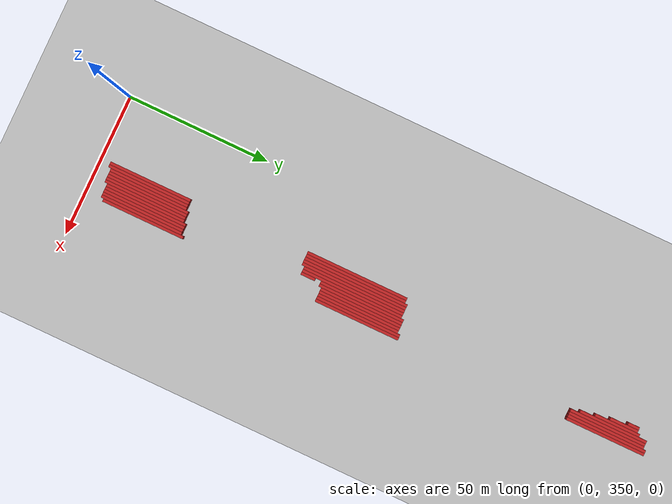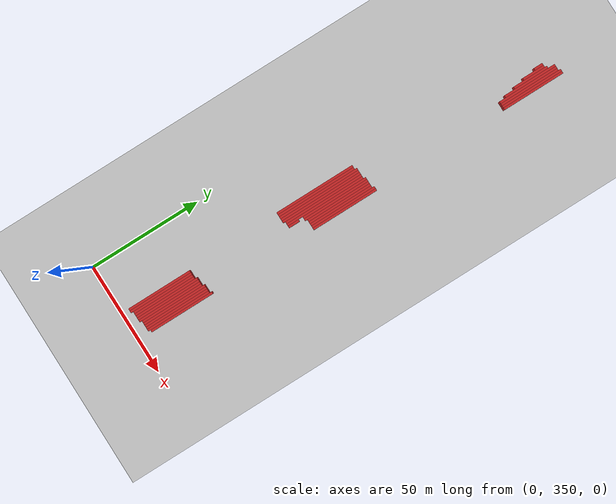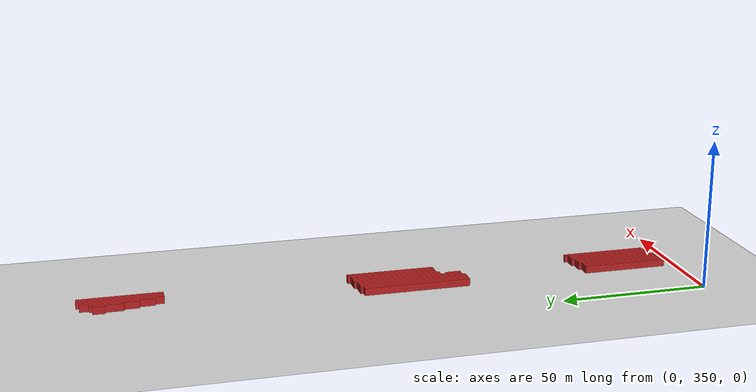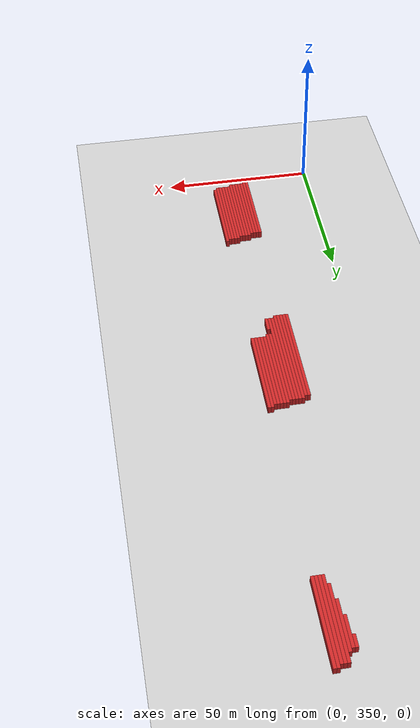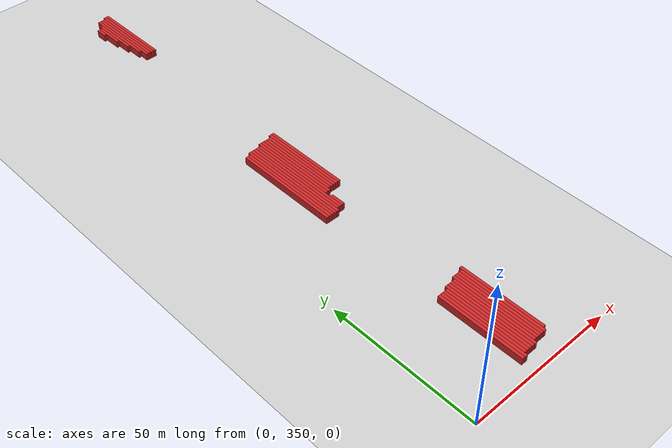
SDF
<sdf version="1.4">
 <world name="1_wall">
  <model name="ground_plane">
   <static>1</static>
   <link name="link">
    <collision name="collision">
     <geometry><plane><normal>0 0 1</normal><size>1000 1000</size></plane></geometry>
     <surface><friction><ode><mu>100</mu><mu2>50</mu2></ode></friction></surface>
    </collision>
    <visual name="visual">
     <cast_shadows>0</cast_shadows>
     <geometry><plane><normal>0 0 1</normal><size>10000 10000</size></plane></geometry>
     <material>
      <script><uri>file://media/materials/scripts/gazebo.material</uri><name>Gazebo/Grey</name></script>
     </material>
    </visual>
    <velocity_decay><linear>0</linear><angular>0</angular></velocity_decay>
   </link>
  </model>
  <model name="Wall_37">
   <static>1</static>
   <link name="Wall_37">
    <collision name="Wall_Collision_37">
     <geometry><box><size>36.0 1.0 2.5</size></box></geometry>
     <pose>0 0 1.25 0 -0 0</pose>
    </collision>
    <visual name="Wall_Visual_37">
     <pose>0 0 1.25 0 -0 0</pose>
     <geometry><box><size>36.0 1.0 2.5</size></box></geometry>
     <material>
      <script><uri>file://media/materials/scripts/gazebo.material</uri><name>Gazebo/Red</name></script>
     </material>
    </visual>
    <velocity_decay><linear>0</linear><angular>0</angular></velocity_decay>
    <pose>21.5 443.0 0 0 0 1.5707963267948966</pose>
   </link>
  </model>
  <model name="Wall_38">
   <static>1</static>
   <link name="Wall_38">
    <collision name="Wall_Collision_38">
     <geometry><box><size>29.0 1.0 2.5</size></box></geometry>
     <pose>0 0 1.25 0 -0 0</pose>
    </collision>
    <visual name="Wall_Visual_38">
     <pose>0 0 1.25 0 -0 0</pose>
     <geometry><box><size>29.0 1.0 2.5</size></box></geometry>
     <material>
      <script><uri>file://media/materials/scripts/gazebo.material</uri><name>Gazebo/Red</name></script>
     </material>
    </visual>
    <velocity_decay><linear>0</linear><angular>0</angular></velocity_decay>
    <pose>22.5 368.5 0 0 0 1.5707963267948966</pose>
   </link>
  </model>
  <model name="Wall_39">
   <static>1</static>
   <link name="Wall_39">
    <collision name="Wall_Collision_39">
     <geometry><box><size>36.0 1.0 2.5</size></box></geometry>
     <pose>0 0 1.25 0 -0 0</pose>
    </collision>
    <visual name="Wall_Visual_39">
     <pose>0 0 1.25 0 -0 0</pose>
     <geometry><box><size>36.0 1.0 2.5</size></box></geometry>
     <material>
      <script><uri>file://media/materials/scripts/gazebo.material</uri><name>Gazebo/Red</name></script>
     </material>
    </visual>
    <velocity_decay><linear>0</linear><angular>0</angular></velocity_decay>
    <pose>22.5 443.0 0 0 0 1.5707963267948966</pose>
   </link>
  </model>
  <model name="Wall_40">
   <static>1</static>
   <link name="Wall_40">
    <collision name="Wall_Collision_40">
     <geometry><box><size>29.0 1.0 2.5</size></box></geometry>
     <pose>0 0 1.25 0 -0 0</pose>
    </collision>
    <visual name="Wall_Visual_40">
     <pose>0 0 1.25 0 -0 0</pose>
     <geometry><box><size>29.0 1.0 2.5</size></box></geometry>
     <material>
      <script><uri>file://media/materials/scripts/gazebo.material</uri><name>Gazebo/Red</name></script>
     </material>
    </visual>
    <velocity_decay><linear>0</linear><angular>0</angular></velocity_decay>
    <pose>23.5 368.5 0 0 0 1.5707963267948966</pose>
   </link>
  </model>
  <model name="Wall_41">
   <static>1</static>
   <link name="Wall_41">
    <collision name="Wall_Collision_41">
     <geometry><box><size>37.0 1.0 2.5</size></box></geometry>
     <pose>0 0 1.25 0 -0 0</pose>
    </collision>
    <visual name="Wall_Visual_41">
     <pose>0 0 1.25 0 -0 0</pose>
     <geometry><box><size>37.0 1.0 2.5</size></box></geometry>
     <material>
      <script><uri>file://media/materials/scripts/gazebo.material</uri><name>Gazebo/Red</name></script>
     </material>
    </visual>
    <velocity_decay><linear>0</linear><angular>0</angular></velocity_decay>
    <pose>23.5 443.5 0 0 0 1.5707963267948966</pose>
   </link>
  </model>
  <model name="Wall_42">
   <static>1</static>
   <link name="Wall_42">
    <collision name="Wall_Collision_42">
     <geometry><box><size>28.0 1.0 2.5</size></box></geometry>
     <pose>0 0 1.25 0 -0 0</pose>
    </collision>
    <visual name="Wall_Visual_42">
     <pose>0 0 1.25 0 -0 0</pose>
     <geometry><box><size>28.0 1.0 2.5</size></box></geometry>
     <material>
      <script><uri>file://media/materials/scripts/gazebo.material</uri><name>Gazebo/Red</name></script>
     </material>
    </visual>
    <velocity_decay><linear>0</linear><angular>0</angular></velocity_decay>
    <pose>24.5 369.0 0 0 0 1.5707963267948966</pose>
   </link>
  </model>
  <model name="Wall_43">
   <static>1</static>
   <link name="Wall_43">
    <collision name="Wall_Collision_43">
     <geometry><box><size>37.0 1.0 2.5</size></box></geometry>
     <pose>0 0 1.25 0 -0 0</pose>
    </collision>
    <visual name="Wall_Visual_43">
     <pose>0 0 1.25 0 -0 0</pose>
     <geometry><box><size>37.0 1.0 2.5</size></box></geometry>
     <material>
      <script><uri>file://media/materials/scripts/gazebo.material</uri><name>Gazebo/Red</name></script>
     </material>
    </visual>
    <velocity_decay><linear>0</linear><angular>0</angular></velocity_decay>
    <pose>24.5 443.5 0 0 0 1.5707963267948966</pose>
   </link>
  </model>
  <model name="Wall_44">
   <static>1</static>
   <link name="Wall_44">
    <collision name="Wall_Collision_44">
     <geometry><box><size>28.0 1.0 2.5</size></box></geometry>
     <pose>0 0 1.25 0 -0 0</pose>
    </collision>
    <visual name="Wall_Visual_44">
     <pose>0 0 1.25 0 -0 0</pose>
     <geometry><box><size>28.0 1.0 2.5</size></box></geometry>
     <material>
      <script><uri>file://media/materials/scripts/gazebo.material</uri><name>Gazebo/Red</name></script>
     </material>
    </visual>
    <velocity_decay><linear>0</linear><angular>0</angular></velocity_decay>
    <pose>25.5 369.0 0 0 0 1.5707963267948966</pose>
   </link>
  </model>
  <model name="Wall_45">
   <static>1</static>
   <link name="Wall_45">
    <collision name="Wall_Collision_45">
     <geometry><box><size>37.0 1.0 2.5</size></box></geometry>
     <pose>0 0 1.25 0 -0 0</pose>
    </collision>
    <visual name="Wall_Visual_45">
     <pose>0 0 1.25 0 -0 0</pose>
     <geometry><box><size>37.0 1.0 2.5</size></box></geometry>
     <material>
      <script><uri>file://media/materials/scripts/gazebo.material</uri><name>Gazebo/Red</name></script>
     </material>
    </visual>
    <velocity_decay><linear>0</linear><angular>0</angular></velocity_decay>
    <pose>25.5 443.5 0 0 0 1.5707963267948966</pose>
   </link>
  </model>
  <model name="Wall_46">
   <static>1</static>
   <link name="Wall_46">
    <collision name="Wall_Collision_46">
     <geometry><box><size>29.0 1.0 2.5</size></box></geometry>
     <pose>0 0 1.25 0 -0 0</pose>
    </collision>
    <visual name="Wall_Visual_46">
     <pose>0 0 1.25 0 -0 0</pose>
     <geometry><box><size>29.0 1.0 2.5</size></box></geometry>
     <material>
      <script><uri>file://media/materials/scripts/gazebo.material</uri><name>Gazebo/Red</name></script>
     </material>
    </visual>
    <velocity_decay><linear>0</linear><angular>0</angular></velocity_decay>
    <pose>26.5 369.5 0 0 0 1.5707963267948966</pose>
   </link>
  </model>
  <model name="Wall_47">
   <static>1</static>
   <link name="Wall_47">
    <collision name="Wall_Collision_47">
     <geometry><box><size>36.0 1.0 2.5</size></box></geometry>
     <pose>0 0 1.25 0 -0 0</pose>
    </collision>
    <visual name="Wall_Visual_47">
     <pose>0 0 1.25 0 -0 0</pose>
     <geometry><box><size>36.0 1.0 2.5</size></box></geometry>
     <material>
      <script><uri>file://media/materials/scripts/gazebo.material</uri><name>Gazebo/Red</name></script>
     </material>
    </visual>
    <velocity_decay><linear>0</linear><angular>0</angular></velocity_decay>
    <pose>26.5 444.0 0 0 0 1.5707963267948966</pose>
   </link>
  </model>
  <model name="Wall_48">
   <static>1</static>
   <link name="Wall_48">
    <collision name="Wall_Collision_48">
     <geometry><box><size>29.0 1.0 2.5</size></box></geometry>
     <pose>0 0 1.25 0 -0 0</pose>
    </collision>
    <visual name="Wall_Visual_48">
     <pose>0 0 1.25 0 -0 0</pose>
     <geometry><box><size>29.0 1.0 2.5</size></box></geometry>
     <material>
      <script><uri>file://media/materials/scripts/gazebo.material</uri><name>Gazebo/Red</name></script>
     </material>
    </visual>
    <velocity_decay><linear>0</linear><angular>0</angular></velocity_decay>
    <pose>27.5 369.5 0 0 0 1.5707963267948966</pose>
   </link>
  </model>
  <model name="Wall_49">
   <static>1</static>
   <link name="Wall_49">
    <collision name="Wall_Collision_49">
     <geometry><box><size>36.0 1.0 2.5</size></box></geometry>
     <pose>0 0 1.25 0 -0 0</pose>
    </collision>
    <visual name="Wall_Visual_49">
     <pose>0 0 1.25 0 -0 0</pose>
     <geometry><box><size>36.0 1.0 2.5</size></box></geometry>
     <material>
      <script><uri>file://media/materials/scripts/gazebo.material</uri><name>Gazebo/Red</name></script>
     </material>
    </visual>
    <velocity_decay><linear>0</linear><angular>0</angular></velocity_decay>
    <pose>27.5 444.0 0 0 0 1.5707963267948966</pose>
   </link>
  </model>
  <model name="Wall_50">
   <static>1</static>
   <link name="Wall_50">
    <collision name="Wall_Collision_50">
     <geometry><box><size>4.0 1.0 2.5</size></box></geometry>
     <pose>0 0 1.25 0 -0 0</pose>
    </collision>
    <visual name="Wall_Visual_50">
     <pose>0 0 1.25 0 -0 0</pose>
     <geometry><box><size>4.0 1.0 2.5</size></box></geometry>
     <material>
      <script><uri>file://media/materials/scripts/gazebo.material</uri><name>Gazebo/Red</name></script>
     </material>
    </visual>
    <velocity_decay><linear>0</linear><angular>0</angular></velocity_decay>
    <pose>27.5 546.0 0 0 0 1.5707963267948966</pose>
   </link>
  </model>
  <model name="Wall_51">
   <static>1</static>
   <link name="Wall_51">
    <collision name="Wall_Collision_51">
     <geometry><box><size>29.0 1.0 2.5</size></box></geometry>
     <pose>0 0 1.25 0 -0 0</pose>
    </collision>
    <visual name="Wall_Visual_51">
     <pose>0 0 1.25 0 -0 0</pose>
     <geometry><box><size>29.0 1.0 2.5</size></box></geometry>
     <material>
      <script><uri>file://media/materials/scripts/gazebo.material</uri><name>Gazebo/Red</name></script>
     </material>
    </visual>
    <velocity_decay><linear>0</linear><angular>0</angular></velocity_decay>
    <pose>28.5 369.5 0 0 0 1.5707963267948966</pose>
   </link>
  </model>
  <model name="Wall_52">
   <static>1</static>
   <link name="Wall_52">
    <collision name="Wall_Collision_52">
     <geometry><box><size>5.0 1.0 2.5</size></box></geometry>
     <pose>0 0 1.25 0 -0 0</pose>
    </collision>
    <visual name="Wall_Visual_52">
     <pose>0 0 1.25 0 -0 0</pose>
     <geometry><box><size>5.0 1.0 2.5</size></box></geometry>
     <material>
      <script><uri>file://media/materials/scripts/gazebo.material</uri><name>Gazebo/Red</name></script>
     </material>
    </visual>
    <velocity_decay><linear>0</linear><angular>0</angular></velocity_decay>
    <pose>28.5 428.5 0 0 0 1.5707963267948966</pose>
   </link>
  </model>
  <model name="Wall_53">
   <static>1</static>
   <link name="Wall_53">
    <collision name="Wall_Collision_53">
     <geometry><box><size>30.0 1.0 2.5</size></box></geometry>
     <pose>0 0 1.25 0 -0 0</pose>
    </collision>
    <visual name="Wall_Visual_53">
     <pose>0 0 1.25 0 -0 0</pose>
     <geometry><box><size>30.0 1.0 2.5</size></box></geometry>
     <material>
      <script><uri>file://media/materials/scripts/gazebo.material</uri><name>Gazebo/Red</name></script>
     </material>
    </visual>
    <velocity_decay><linear>0</linear><angular>0</angular></velocity_decay>
    <pose>28.5 448.0 0 0 0 1.5707963267948966</pose>
   </link>
  </model>
  <model name="Wall_54">
   <static>1</static>
   <link name="Wall_54">
    <collision name="Wall_Collision_54">
     <geometry><box><size>10.0 1.0 2.5</size></box></geometry>
     <pose>0 0 1.25 0 -0 0</pose>
    </collision>
    <visual name="Wall_Visual_54">
     <pose>0 0 1.25 0 -0 0</pose>
     <geometry><box><size>10.0 1.0 2.5</size></box></geometry>
     <material>
      <script><uri>file://media/materials/scripts/gazebo.material</uri><name>Gazebo/Red</name></script>
     </material>
    </visual>
    <velocity_decay><linear>0</linear><angular>0</angular></velocity_decay>
    <pose>28.5 543.0 0 0 0 1.5707963267948966</pose>
   </link>
  </model>
  <model name="Wall_55">
   <static>1</static>
   <link name="Wall_55">
    <collision name="Wall_Collision_55">
     <geometry><box><size>28.0 1.0 2.5</size></box></geometry>
     <pose>0 0 1.25 0 -0 0</pose>
    </collision>
    <visual name="Wall_Visual_55">
     <pose>0 0 1.25 0 -0 0</pose>
     <geometry><box><size>28.0 1.0 2.5</size></box></geometry>
     <material>
      <script><uri>file://media/materials/scripts/gazebo.material</uri><name>Gazebo/Red</name></script>
     </material>
    </visual>
    <velocity_decay><linear>0</linear><angular>0</angular></velocity_decay>
    <pose>29.5 370.0 0 0 0 1.5707963267948966</pose>
   </link>
  </model>
  <model name="Wall_56">
   <static>1</static>
   <link name="Wall_56">
    <collision name="Wall_Collision_56">
     <geometry><box><size>30.0 1.0 2.5</size></box></geometry>
     <pose>0 0 1.25 0 -0 0</pose>
    </collision>
    <visual name="Wall_Visual_56">
     <pose>0 0 1.25 0 -0 0</pose>
     <geometry><box><size>30.0 1.0 2.5</size></box></geometry>
     <material>
      <script><uri>file://media/materials/scripts/gazebo.material</uri><name>Gazebo/Red</name></script>
     </material>
    </visual>
    <velocity_decay><linear>0</linear><angular>0</angular></velocity_decay>
    <pose>29.5 448.0 0 0 0 1.5707963267948966</pose>
   </link>
  </model>
  <model name="Wall_57">
   <static>1</static>
   <link name="Wall_57">
    <collision name="Wall_Collision_57">
     <geometry><box><size>16.0 1.0 2.5</size></box></geometry>
     <pose>0 0 1.25 0 -0 0</pose>
    </collision>
    <visual name="Wall_Visual_57">
     <pose>0 0 1.25 0 -0 0</pose>
     <geometry><box><size>16.0 1.0 2.5</size></box></geometry>
     <material>
      <script><uri>file://media/materials/scripts/gazebo.material</uri><name>Gazebo/Red</name></script>
     </material>
    </visual>
    <velocity_decay><linear>0</linear><angular>0</angular></velocity_decay>
    <pose>29.5 541.0 0 0 0 1.5707963267948966</pose>
   </link>
  </model>
  <model name="Wall_58">
   <static>1</static>
   <link name="Wall_58">
    <collision name="Wall_Collision_58">
     <geometry><box><size>29.0 1.0 2.5</size></box></geometry>
     <pose>0 0 1.25 0 -0 0</pose>
    </collision>
    <visual name="Wall_Visual_58">
     <pose>0 0 1.25 0 -0 0</pose>
     <geometry><box><size>29.0 1.0 2.5</size></box></geometry>
     <material>
      <script><uri>file://media/materials/scripts/gazebo.material</uri><name>Gazebo/Red</name></script>
     </material>
    </visual>
    <velocity_decay><linear>0</linear><angular>0</angular></velocity_decay>
    <pose>30.5 370.5 0 0 0 1.5707963267948966</pose>
   </link>
  </model>
  <model name="Wall_59">
   <static>1</static>
   <link name="Wall_59">
    <collision name="Wall_Collision_59">
     <geometry><box><size>29.0 1.0 2.5</size></box></geometry>
     <pose>0 0 1.25 0 -0 0</pose>
    </collision>
    <visual name="Wall_Visual_59">
     <pose>0 0 1.25 0 -0 0</pose>
     <geometry><box><size>29.0 1.0 2.5</size></box></geometry>
     <material>
      <script><uri>file://media/materials/scripts/gazebo.material</uri><name>Gazebo/Red</name></script>
     </material>
    </visual>
    <velocity_decay><linear>0</linear><angular>0</angular></velocity_decay>
    <pose>30.5 448.5 0 0 0 1.5707963267948966</pose>
   </link>
  </model>
  <model name="Wall_60">
   <static>1</static>
   <link name="Wall_60">
    <collision name="Wall_Collision_60">
     <geometry><box><size>24.0 1.0 2.5</size></box></geometry>
     <pose>0 0 1.25 0 -0 0</pose>
    </collision>
    <visual name="Wall_Visual_60">
     <pose>0 0 1.25 0 -0 0</pose>
     <geometry><box><size>24.0 1.0 2.5</size></box></geometry>
     <material>
      <script><uri>file://media/materials/scripts/gazebo.material</uri><name>Gazebo/Red</name></script>
     </material>
    </visual>
    <velocity_decay><linear>0</linear><angular>0</angular></velocity_decay>
    <pose>30.5 540.0 0 0 0 1.5707963267948966</pose>
   </link>
  </model>
  <model name="Wall_61">
   <static>1</static>
   <link name="Wall_61">
    <collision name="Wall_Collision_61">
     <geometry><box><size>29.0 1.0 2.5</size></box></geometry>
     <pose>0 0 1.25 0 -0 0</pose>
    </collision>
    <visual name="Wall_Visual_61">
     <pose>0 0 1.25 0 -0 0</pose>
     <geometry><box><size>29.0 1.0 2.5</size></box></geometry>
     <material>
      <script><uri>file://media/materials/scripts/gazebo.material</uri><name>Gazebo/Red</name></script>
     </material>
    </visual>
    <velocity_decay><linear>0</linear><angular>0</angular></velocity_decay>
    <pose>31.5 370.5 0 0 0 1.5707963267948966</pose>
   </link>
  </model>
  <model name="Wall_62">
   <static>1</static>
   <link name="Wall_62">
    <collision name="Wall_Collision_62">
     <geometry><box><size>29.0 1.0 2.5</size></box></geometry>
     <pose>0 0 1.25 0 -0 0</pose>
    </collision>
    <visual name="Wall_Visual_62">
     <pose>0 0 1.25 0 -0 0</pose>
     <geometry><box><size>29.0 1.0 2.5</size></box></geometry>
     <material>
      <script><uri>file://media/materials/scripts/gazebo.material</uri><name>Gazebo/Red</name></script>
     </material>
    </visual>
    <velocity_decay><linear>0</linear><angular>0</angular></velocity_decay>
    <pose>31.5 448.5 0 0 0 1.5707963267948966</pose>
   </link>
  </model>
  <model name="Wall_63">
   <static>1</static>
   <link name="Wall_63">
    <collision name="Wall_Collision_63">
     <geometry><box><size>27.0 1.0 2.5</size></box></geometry>
     <pose>0 0 1.25 0 -0 0</pose>
    </collision>
    <visual name="Wall_Visual_63">
     <pose>0 0 1.25 0 -0 0</pose>
     <geometry><box><size>27.0 1.0 2.5</size></box></geometry>
     <material>
      <script><uri>file://media/materials/scripts/gazebo.material</uri><name>Gazebo/Red</name></script>
     </material>
    </visual>
    <velocity_decay><linear>0</linear><angular>0</angular></velocity_decay>
    <pose>31.5 538.5 0 0 0 1.5707963267948966</pose>
   </link>
  </model>
  <model name="Wall_64">
   <static>1</static>
   <link name="Wall_64">
    <collision name="Wall_Collision_64">
     <geometry><box><size>29.0 1.0 2.5</size></box></geometry>
     <pose>0 0 1.25 0 -0 0</pose>
    </collision>
    <visual name="Wall_Visual_64">
     <pose>0 0 1.25 0 -0 0</pose>
     <geometry><box><size>29.0 1.0 2.5</size></box></geometry>
     <material>
      <script><uri>file://media/materials/scripts/gazebo.material</uri><name>Gazebo/Red</name></script>
     </material>
    </visual>
    <velocity_decay><linear>0</linear><angular>0</angular></velocity_decay>
    <pose>32.5 370.5 0 0 0 1.5707963267948966</pose>
   </link>
  </model>
  <model name="Wall_65">
   <static>1</static>
   <link name="Wall_65">
    <collision name="Wall_Collision_65">
     <geometry><box><size>29.0 1.0 2.5</size></box></geometry>
     <pose>0 0 1.25 0 -0 0</pose>
    </collision>
    <visual name="Wall_Visual_65">
     <pose>0 0 1.25 0 -0 0</pose>
     <geometry><box><size>29.0 1.0 2.5</size></box></geometry>
     <material>
      <script><uri>file://media/materials/scripts/gazebo.material</uri><name>Gazebo/Red</name></script>
     </material>
    </visual>
    <velocity_decay><linear>0</linear><angular>0</angular></velocity_decay>
    <pose>32.5 448.5 0 0 0 1.5707963267948966</pose>
   </link>
  </model>
  <model name="Wall_66">
   <static>1</static>
   <link name="Wall_66">
    <collision name="Wall_Collision_66">
     <geometry><box><size>27.0 1.0 2.5</size></box></geometry>
     <pose>0 0 1.25 0 -0 0</pose>
    </collision>
    <visual name="Wall_Visual_66">
     <pose>0 0 1.25 0 -0 0</pose>
     <geometry><box><size>27.0 1.0 2.5</size></box></geometry>
     <material>
      <script><uri>file://media/materials/scripts/gazebo.material</uri><name>Gazebo/Red</name></script>
     </material>
    </visual>
    <velocity_decay><linear>0</linear><angular>0</angular></velocity_decay>
    <pose>32.5 538.5 0 0 0 1.5707963267948966</pose>
   </link>
  </model>
  <model name="Wall_67">
   <static>1</static>
   <link name="Wall_67">
    <collision name="Wall_Collision_67">
     <geometry><box><size>29.0 1.0 2.5</size></box></geometry>
     <pose>0 0 1.25 0 -0 0</pose>
    </collision>
    <visual name="Wall_Visual_67">
     <pose>0 0 1.25 0 -0 0</pose>
     <geometry><box><size>29.0 1.0 2.5</size></box></geometry>
     <material>
      <script><uri>file://media/materials/scripts/gazebo.material</uri><name>Gazebo/Red</name></script>
     </material>
    </visual>
    <velocity_decay><linear>0</linear><angular>0</angular></velocity_decay>
    <pose>33.5 370.5 0 0 0 1.5707963267948966</pose>
   </link>
  </model>
  <model name="Wall_68">
   <static>1</static>
   <link name="Wall_68">
    <collision name="Wall_Collision_68">
     <geometry><box><size>30.0 1.0 2.5</size></box></geometry>
     <pose>0 0 1.25 0 -0 0</pose>
    </collision>
    <visual name="Wall_Visual_68">
     <pose>0 0 1.25 0 -0 0</pose>
     <geometry><box><size>30.0 1.0 2.5</size></box></geometry>
     <material>
      <script><uri>file://media/materials/scripts/gazebo.material</uri><name>Gazebo/Red</name></script>
     </material>
    </visual>
    <velocity_decay><linear>0</linear><angular>0</angular></velocity_decay>
    <pose>33.5 449.0 0 0 0 1.5707963267948966</pose>
   </link>
  </model>
  <model name="Wall_69">
   <static>1</static>
   <link name="Wall_69">
    <collision name="Wall_Collision_69">
     <geometry><box><size>28.0 1.0 2.5</size></box></geometry>
     <pose>0 0 1.25 0 -0 0</pose>
    </collision>
    <visual name="Wall_Visual_69">
     <pose>0 0 1.25 0 -0 0</pose>
     <geometry><box><size>28.0 1.0 2.5</size></box></geometry>
     <material>
      <script><uri>file://media/materials/scripts/gazebo.material</uri><name>Gazebo/Red</name></script>
     </material>
    </visual>
    <velocity_decay><linear>0</linear><angular>0</angular></velocity_decay>
    <pose>33.5 539.0 0 0 0 1.5707963267948966</pose>
   </link>
  </model>
  <model name="Wall_70">
   <static>1</static>
   <link name="Wall_70">
    <collision name="Wall_Collision_70">
     <geometry><box><size>29.0 1.0 2.5</size></box></geometry>
     <pose>0 0 1.25 0 -0 0</pose>
    </collision>
    <visual name="Wall_Visual_70">
     <pose>0 0 1.25 0 -0 0</pose>
     <geometry><box><size>29.0 1.0 2.5</size></box></geometry>
     <material>
      <script><uri>file://media/materials/scripts/gazebo.material</uri><name>Gazebo/Red</name></script>
     </material>
    </visual>
    <velocity_decay><linear>0</linear><angular>0</angular></velocity_decay>
    <pose>34.5 371.5 0 0 0 1.5707963267948966</pose>
   </link>
  </model>
  <model name="Wall_71">
   <static>1</static>
   <link name="Wall_71">
    <collision name="Wall_Collision_71">
     <geometry><box><size>30.0 1.0 2.5</size></box></geometry>
     <pose>0 0 1.25 0 -0 0</pose>
    </collision>
    <visual name="Wall_Visual_71">
     <pose>0 0 1.25 0 -0 0</pose>
     <geometry><box><size>30.0 1.0 2.5</size></box></geometry>
     <material>
      <script><uri>file://media/materials/scripts/gazebo.material</uri><name>Gazebo/Red</name></script>
     </material>
    </visual>
    <velocity_decay><linear>0</linear><angular>0</angular></velocity_decay>
    <pose>34.5 449.0 0 0 0 1.5707963267948966</pose>
   </link>
  </model>
  <model name="Wall_72">
   <static>1</static>
   <link name="Wall_72">
    <collision name="Wall_Collision_72">
     <geometry><box><size>28.0 1.0 2.5</size></box></geometry>
     <pose>0 0 1.25 0 -0 0</pose>
    </collision>
    <visual name="Wall_Visual_72">
     <pose>0 0 1.25 0 -0 0</pose>
     <geometry><box><size>28.0 1.0 2.5</size></box></geometry>
     <material>
      <script><uri>file://media/materials/scripts/gazebo.material</uri><name>Gazebo/Red</name></script>
     </material>
    </visual>
    <velocity_decay><linear>0</linear><angular>0</angular></velocity_decay>
    <pose>34.5 539.0 0 0 0 1.5707963267948966</pose>
   </link>
  </model>
 </world>
</sdf>
